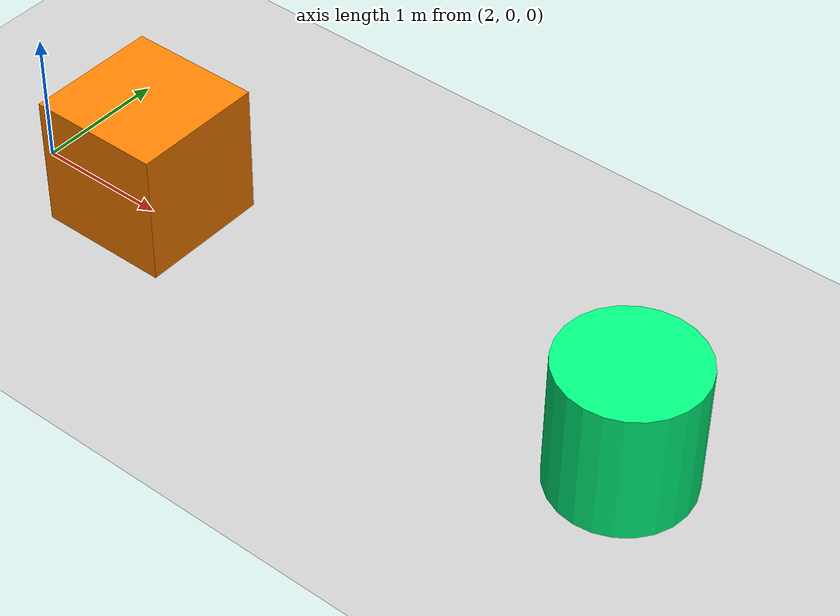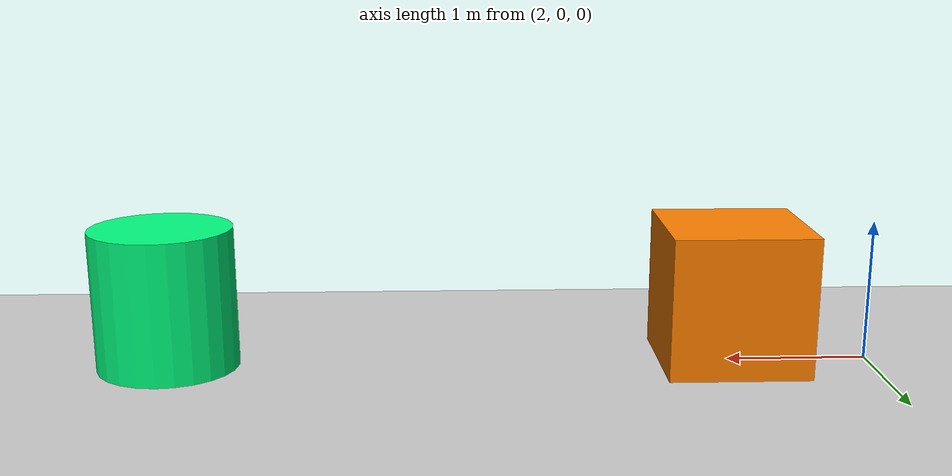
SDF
<?xml version="1.0" ?>
<sdf version="1.7">
  <world name="scene2">
    <!-- Sunlight -->
    <include>
      <uri>model://sun</uri>
    </include>

    <!-- Flat ground -->
    <include>
      <uri>model://ground_plane</uri>
    </include>

    <!-- Dynamic Obstacle 1 - Moving horizontally -->
    <model name="dynamic_obstacle_1">
      <pose>3.0 0.0 0.5 0 0 0</pose>
      <link name="link">
        <collision name="collision">
          <geometry>
            <box>
              <size>1.0 1.0 1.0</size>
            </box>
          </geometry>
        </collision>
        <visual name="visual">
          <geometry>
            <box>
              <size>1.0 1.0 1.0</size>
            </box>
          </geometry>
          <material>
            <ambient>1.0 0.5 0.0 1</ambient>
            <diffuse>1.0 0.5 0.0 1</diffuse>
          </material>
        </visual>
        <inertial>
          <mass>10.0</mass>
          <inertia>
            <ixx>1.0</ixx>
            <iyy>1.0</iyy>
            <izz>1.0</izz>
          </inertia>
        </inertial>
      </link>
      <plugin name="move_plugin" filename="libgazebo_ros_planar_move.so">
        <command_topic>cmd_vel</command_topic>
        <odometry_topic>odom</odometry_topic>
        <odometry_frame>odom</odometry_frame>
        <base_frame_id>base_link</base_frame_id>
      </plugin>
    </model>

    <!-- Dynamic Obstacle 2 - Moving in circle -->
    <model name="dynamic_obstacle_2">
      <pose>7.0 0.0 0.5 0 0 0</pose>
      <link name="link">
        <collision name="collision">
          <geometry>
            <cylinder>
              <radius>0.5</radius>
              <length>1.0</length>
            </cylinder>
          </geometry>
        </collision>
        <visual name="visual">
          <geometry>
            <cylinder>
              <radius>0.5</radius>
              <length>1.0</length>
            </cylinder>
          </geometry>
          <material>
            <ambient>0.0 1.0 0.5 1</ambient>
            <diffuse>0.0 1.0 0.5 1</diffuse>
          </material>
        </visual>
        <inertial>
          <mass>5.0</mass>
          <inertia>
            <ixx>1.0</ixx>
            <iyy>1.0</iyy>
            <izz>1.0</izz>
          </inertia>
        </inertial>
      </link>
    </model>

  </world>
</sdf>
